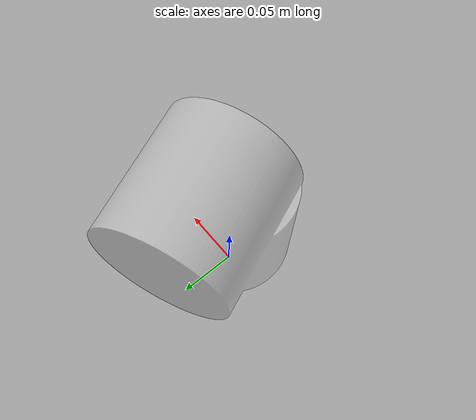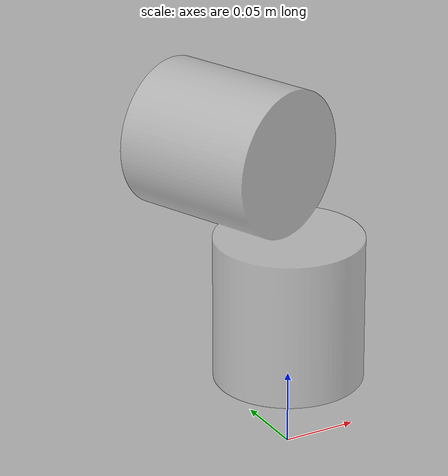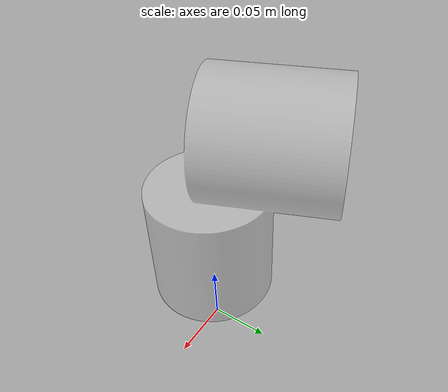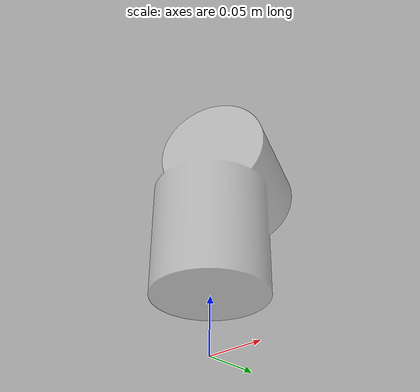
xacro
<?xml version="1.0"?>
<robot xmlns:xacro="http://www.ros.org/wiki/xacro" name="arm_1">
  <xacro:include filename="$(find gazebo_simulator)/models/omni_robot/omni_common.xacro"/>
  <xacro:property name="model_scale" value="0.001"/>

  <link name="base_link"/>

  <joint name="body_joint" type="fixed">
    <parent link="base_link"/>
    <child  link="body_link"/>
    <origin xyz="0 0 0.05" rpy="0 0 ${radians(90)}"/>
  </joint>
  <link name="body_link">
    <visual>
      <geometry>
        <mesh filename="meshes/entyu.stl" scale="${model_scale} ${model_scale} ${model_scale}"/>
      </geometry>
      <material name="gray"/>
    </visual>
    <collision>
      <geometry>
        <mesh filename="meshes/entyu.stl" scale="${model_scale} ${model_scale} ${model_scale}"/>
      </geometry>
    </collision>
    <inertial>
      <mass value="2.0"/>
      <inertia ixx="0.01" ixy="0" ixz="0" iyy="0.01" iyz="0" izz="0.01"/>
    </inertial>
  </link>

  <!-- ros2_control plugin config (keep velocity interfaces compatible with existing controllers) -->
  <ros2_control name="GazeboSystem" type="system">
    <hardware>
      <plugin>gz_ros2_control/GazeboSimSystem</plugin>
    </hardware>

    <joint name="moter1">
      <command_interface name="velocity"/>
      <state_interface name="position"/>
      <state_interface name="velocity"/>
    </joint>

  </ros2_control>

  <gazebo>
    <plugin filename="libgz_ros2_control-system.so" name="gz_ros2_control::GazeboSimROS2ControlPlugin">
    </plugin>
  </gazebo>

  <gazebo>
    <plugin
      filename="libgz-sim-pose-publisher-system.so"
      name="gz::sim::systems::PosePublisher">
      <publish_link_pose>true</publish_link_pose>
      <publish_model_pose>true</publish_model_pose>
      <use_pose_vector_msg>true</use_pose_vector_msg>
      <update_frequency>50</update_frequency>
    </plugin>
  </gazebo>

</robot>

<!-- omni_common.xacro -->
<robot xmlns:xacro="http://ros.org/wiki/xacro">
  <xacro:macro name="pi" params="3.1415926535897931" />
  <material name="gray">
    <color rgba="0.8 0.8 0.8 0.5"/>
  </material>
  <material name="black">
    <color rgba="0 0 0 1.0"/>
  </material>
  <material name="white">
    <color rgba="1.0 1.0 1.0 1.0"/>
  </material>
  <material name="red">
    <color rgba="1.0 0 0 1.0"/>
  </material>
  <material name="light_red">
    <color rgba="1.0 0.5 0.5 1.0"/>
  </material>
  <material name="green">
    <color rgba="0 1.0 0 0.5"/>
  </material>
  <material name="yellow">
    <color rgba="0 1.0 1.0 1.0"/>
  </material>
</robot>
